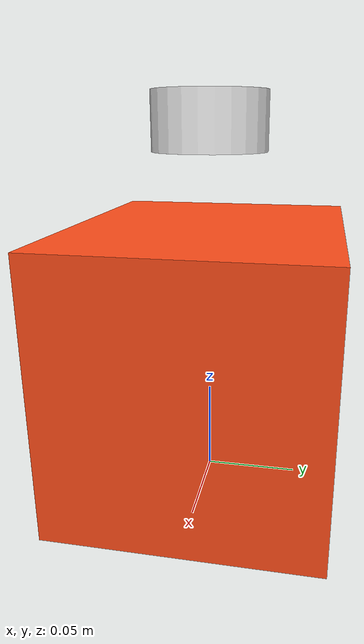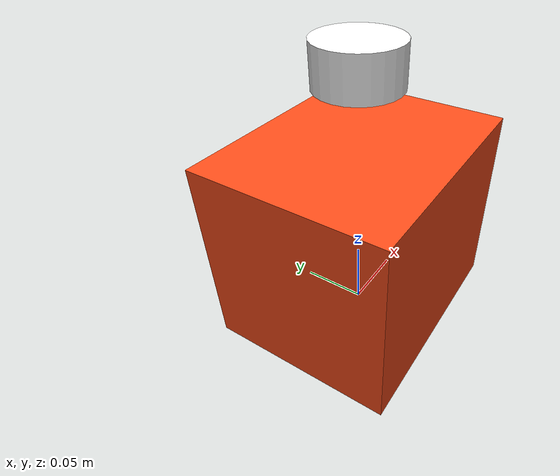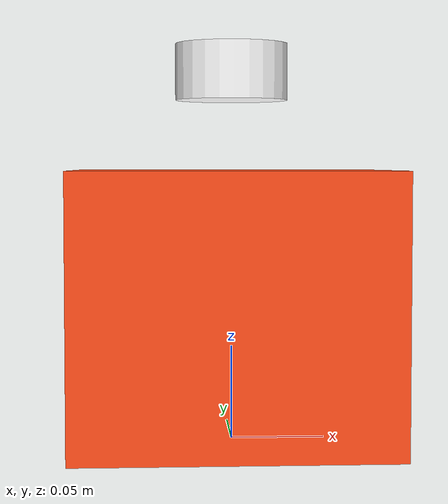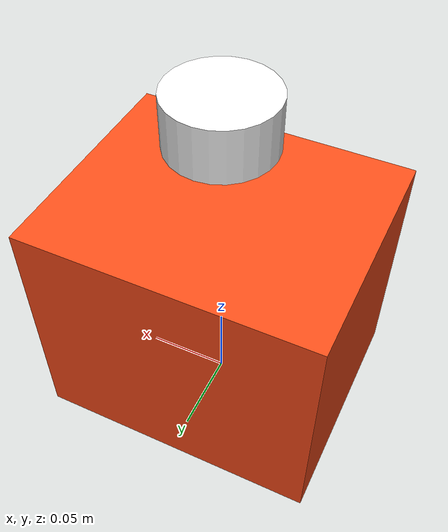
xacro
<?xml version="1.0"?>
<robot xmlns:xacro="http://www.ros.org/wiki/xacro" >

    <material name="white">
        <color rgba="1 1 1 1" />
    </material>

    <material name="orange">
        <color rgba="1 0.3 0.1 1"/>
    </material>

    <material name="blue">
        <color rgba="0.2 0.2 1 1"/>
    </material>

    <material name="black">
        <color rgba="0 0 0 1"/>
    </material>

    <!-- BASE_FOOTPRINT LINK -->

    <link name="base_footprint">
    </link>

    <joint name="base_footprint_joint" type="fixed">
        <parent link="base_footprint"/>
        <child link="base_link"/>
        <origin xyz="0 0 0.0725" rpy="0 0 0"/>
    </joint>

    <!-- BASE LINK -->

    <link name="base_link">
        <visual>
            <origin xyz="0 0 0"/>
            <geometry>
                <box size="0.17 0.14 0.145"/>
            </geometry>
            <material name="orange"/>
        </visual>
        <collision>
            <origin xyz="0 0 0"/>
            <geometry>
                <box size="0.17 0.14 0.145"/>
            </geometry>
        </collision>
    </link>

    <!-- LIDAR -->

    <joint name="lidar_joint" type="fixed">
        <parent link="base_link"/>
        <child link="laser"/>
        <origin xyz="0.0 0 0.125" rpy="0 0 -${pi/2}"/>
    </joint>

    <link name="laser">
        <visual>
            <origin xyz="0 0 0"/>
            <geometry>
                <cylinder length="0.030" radius="0.030"/>
            </geometry>
            <material name="white"/>
        </visual>
        <collision>
            <origin xyz="0 0 0"/>
            <geometry>
                <cylinder length="0.030" radius="0.030"/>
            </geometry>
        </collision>
    </link>

    <!-- imu -->
    <joint name="imu_joint" type="fixed">
        <parent link="base_link"/>
        <child link="imu_link"/>
        <origin xyz="0.025 0.038 0" rpy="0 0 0"/>
    </joint>

    <link name="imu_link">
        <visual>
            <origin xyz="0 0 0"/>
            <geometry>
                <box size="0.05 0.05 0.01"/>
            </geometry>
            <material name="orange"/>
        </visual>
        <collision>
            <origin xyz="0 0 0"/>
            <geometry>
                <box size="0.05 0.05 0.01"/>
            </geometry>
        </collision>
    </link>
</robot>
